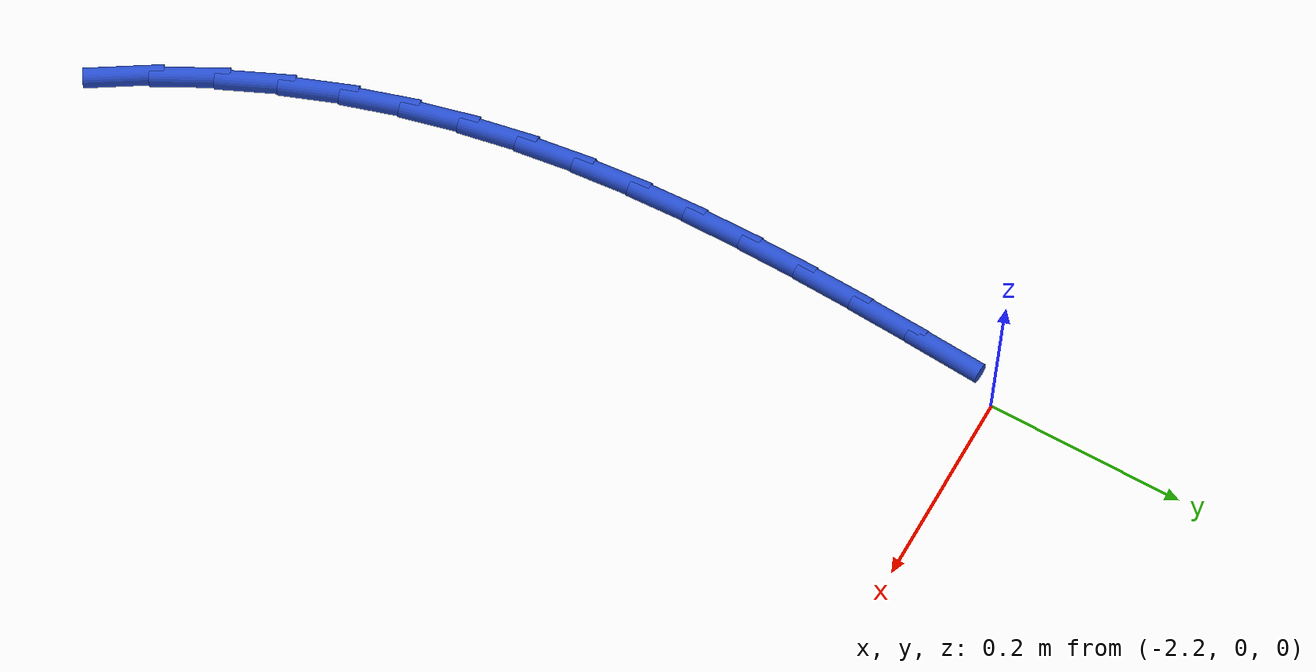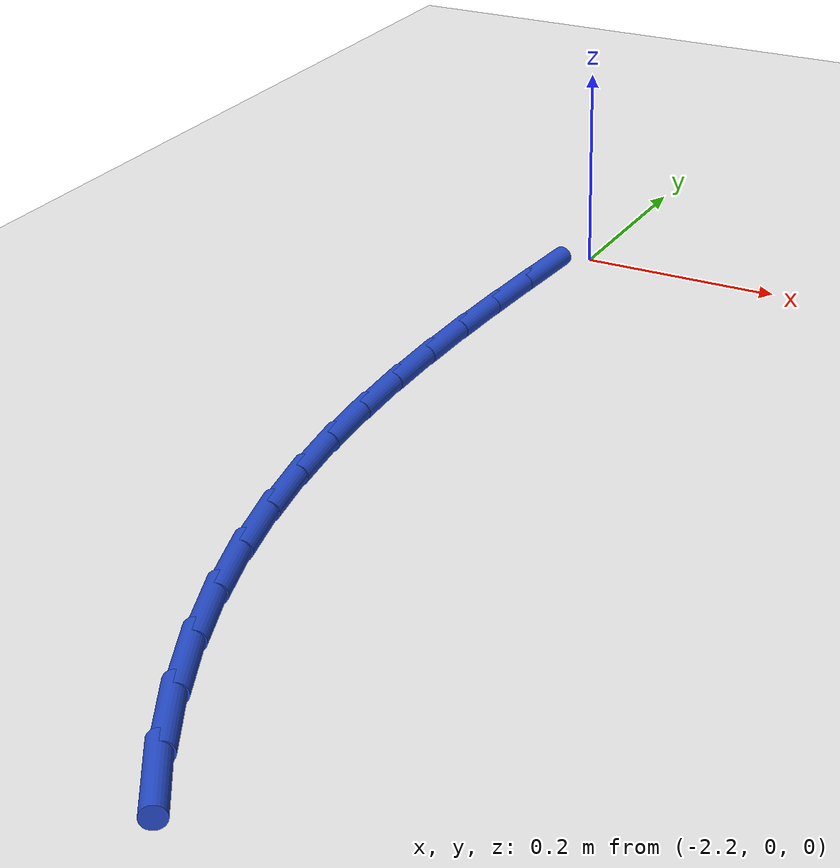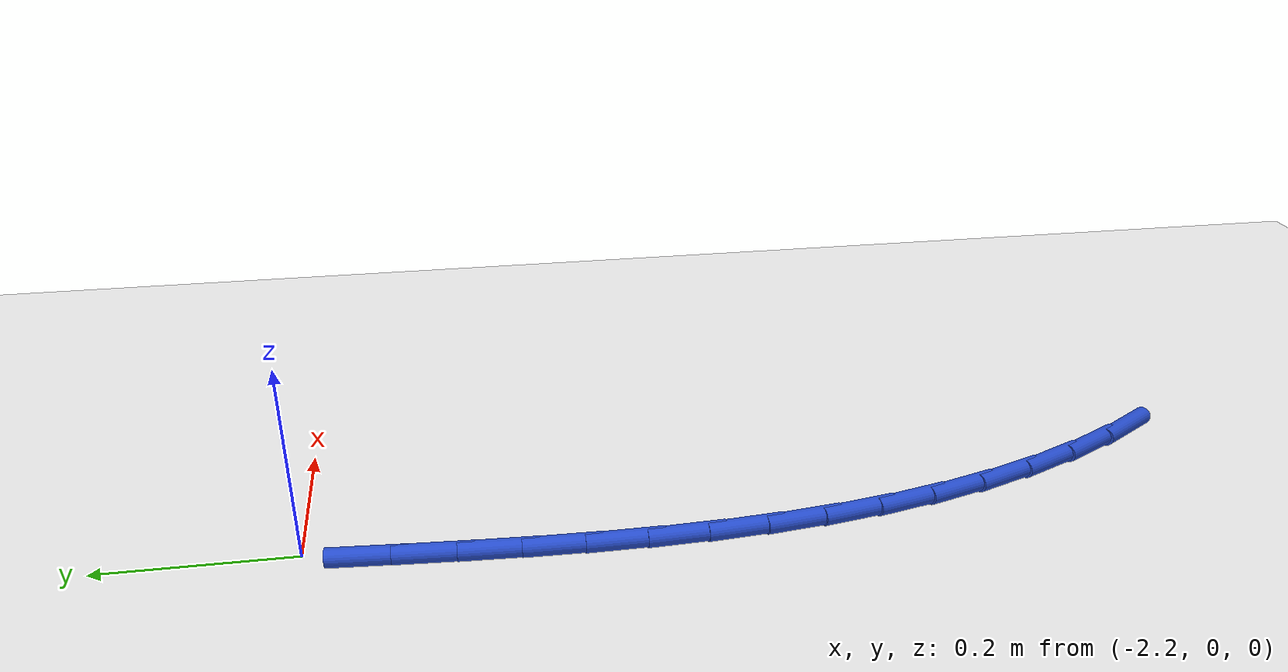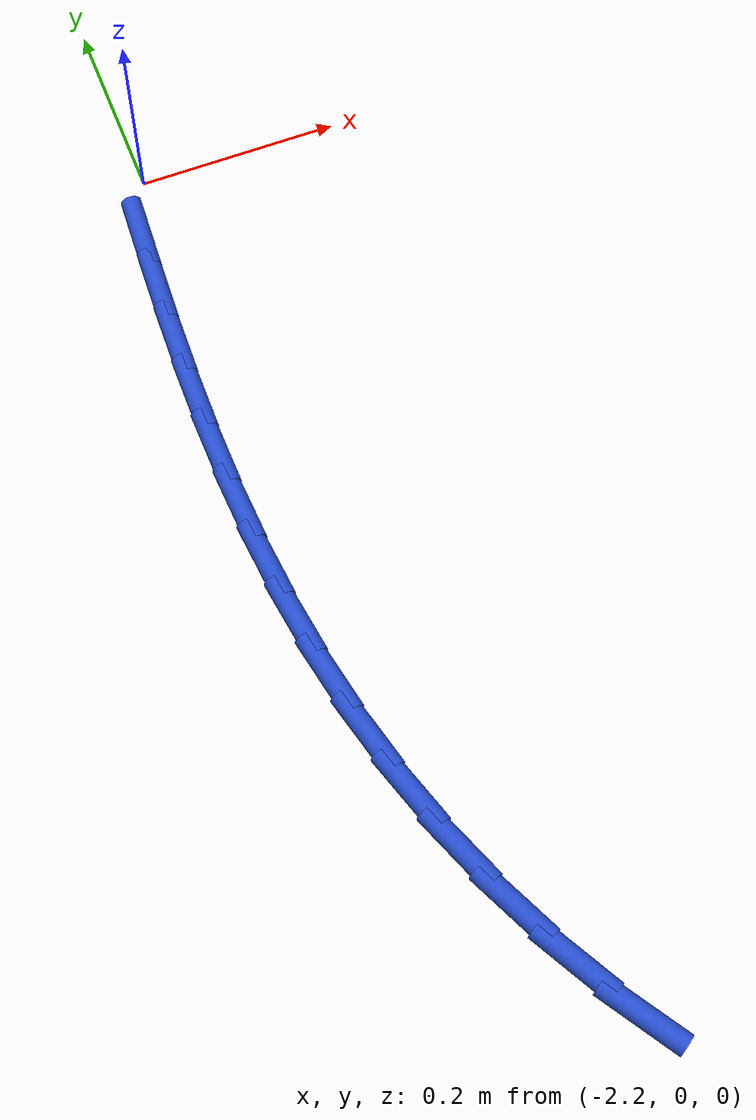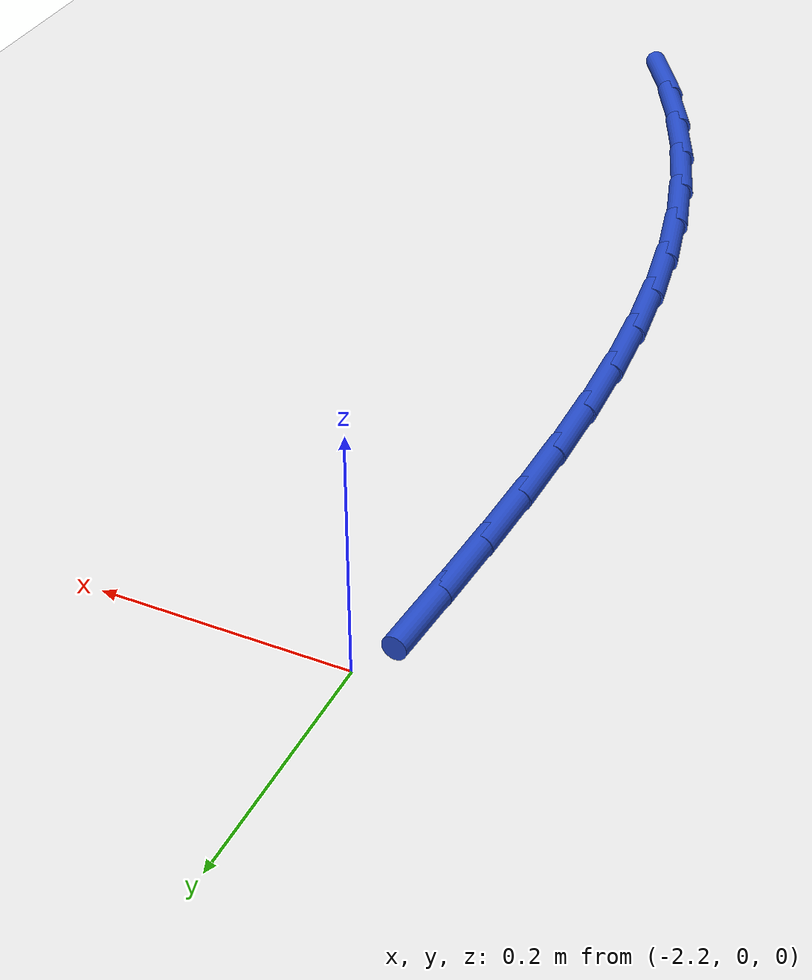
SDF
<sdf version="1.6">
 <world name="default">
  <model name="ground_plane">
   <static>1</static>
   <link name="link">
    <collision name="collision">
     <geometry><plane><normal>0 0 1</normal><size>100 100</size></plane></geometry>
     <surface><friction><ode><mu>100</mu><mu2>50</mu2></ode></friction></surface>
    </collision>
    <visual name="visual">
     <cast_shadows>0</cast_shadows>
     <geometry><plane><normal>0 0 1</normal><size>100 100</size></plane></geometry>
     <material>
      <script><uri>file://media/materials/scripts/gazebo.material</uri><name>Gazebo/WhiteGlow</name></script>
     </material>
    </visual>
   </link>
  </model>
  <model name="line">
   <link name="link_61">
    <pose>-2.2233157254688924 -0.063669461406457 0.01 0 1.57 1.5038848442014618</pose>
    <collision name="collision">
     <geometry><cylinder><radius>0.01</radius><length>0.08</length></cylinder></geometry>
    </collision>
    <visual name="visual">
     <material>
      <script><name>Gazebo/Blue</name><uri>file://media/materials/scripts/gazebo.material</uri></script>
     </material>
     <geometry><cylinder><radius>0.01</radius><length>0.08</length></cylinder></geometry>
    </visual>
   </link>
   <link name="link_62">
    <pose>-2.2275458719565338 -0.1267951230068335 0.01 0 1.57 1.5148610297473717</pose>
    <collision name="collision">
     <geometry><cylinder><radius>0.01</radius><length>0.08</length></cylinder></geometry>
    </collision>
    <visual name="visual">
     <material>
      <script><name>Gazebo/Blue</name><uri>file://media/materials/scripts/gazebo.material</uri></script>
     </material>
     <geometry><cylinder><radius>0.01</radius><length>0.08</length></cylinder></geometry>
    </visual>
   </link>
   <link name="link_63">
    <pose>-2.2310494170610333 -0.18936546074656474 0.01 0 1.57 1.531641688120859</pose>
    <collision name="collision">
     <geometry><cylinder><radius>0.01</radius><length>0.08</length></cylinder></geometry>
    </collision>
    <visual name="visual">
     <material>
      <script><name>Gazebo/Blue</name><uri>file://media/materials/scripts/gazebo.material</uri></script>
     </material>
     <geometry><cylinder><radius>0.01</radius><length>0.08</length></cylinder></geometry>
    </visual>
   </link>
   <link name="link_64">
    <pose>-2.2334801951309227 -0.2514152159768464 0.01 0 1.57 1.5543621168642983</pose>
    <collision name="collision">
     <geometry><cylinder><radius>0.01</radius><length>0.08</length></cylinder></geometry>
    </collision>
    <visual name="visual">
     <material>
      <script><name>Gazebo/Blue</name><uri>file://media/materials/scripts/gazebo.material</uri></script>
     </material>
     <geometry><cylinder><radius>0.01</radius><length>0.08</length></cylinder></geometry>
    </visual>
   </link>
   <link name="link_65">
    <pose>-2.2344920405147373 -0.312979130048877 0.01 0 1.57 -1.5584713369978251</pose>
    <collision name="collision">
     <geometry><cylinder><radius>0.01</radius><length>0.08</length></cylinder></geometry>
    </collision>
    <visual name="visual">
     <material>
      <script><name>Gazebo/Blue</name><uri>file://media/materials/scripts/gazebo.material</uri></script>
     </material>
     <geometry><cylinder><radius>0.01</radius><length>0.08</length></cylinder></geometry>
    </visual>
   </link>
   <link name="link_66">
    <pose>-2.2337387875610077 -0.37409194431385434 0.01 0 1.57 -1.523637179823988</pose>
    <collision name="collision">
     <geometry><cylinder><radius>0.01</radius><length>0.08</length></cylinder></geometry>
    </collision>
    <visual name="visual">
     <material>
      <script><name>Gazebo/Blue</name><uri>file://media/materials/scripts/gazebo.material</uri></script>
     </material>
     <geometry><cylinder><radius>0.01</radius><length>0.08</length></cylinder></geometry>
    </visual>
   </link>
   <link name="link_67">
    <pose>-2.2308742706182687 -0.4347884001229747 0.01 0 1.57 -1.4827881463092583</pose>
    <collision name="collision">
     <geometry><cylinder><radius>0.01</radius><length>0.08</length></cylinder></geometry>
    </collision>
    <visual name="visual">
     <material>
      <script><name>Gazebo/Blue</name><uri>file://media/materials/scripts/gazebo.material</uri></script>
     </material>
     <geometry><cylinder><radius>0.01</radius><length>0.08</length></cylinder></geometry>
    </visual>
   </link>
   <link name="link_68">
    <pose>-2.2255523240350525 -0.4951032388274361 0.01 0 1.57 -1.4361184984106226</pose>
    <collision name="collision">
     <geometry><cylinder><radius>0.01</radius><length>0.08</length></cylinder></geometry>
    </collision>
    <visual name="visual">
     <material>
      <script><name>Gazebo/Blue</name><uri>file://media/materials/scripts/gazebo.material</uri></script>
     </material>
     <geometry><cylinder><radius>0.01</radius><length>0.08</length></cylinder></geometry>
    </visual>
   </link>
   <link name="link_69">
    <pose>-2.217426782159894 -0.5550712017784359 0.01 0 1.57 -1.3839940303814915</pose>
    <collision name="collision">
     <geometry><cylinder><radius>0.01</radius><length>0.08</length></cylinder></geometry>
    </collision>
    <visual name="visual">
     <material>
      <script><name>Gazebo/Blue</name><uri>file://media/materials/scripts/gazebo.material</uri></script>
     </material>
     <geometry><cylinder><radius>0.01</radius><length>0.08</length></cylinder></geometry>
    </visual>
   </link>
   <link name="link_70">
    <pose>-2.2061514793413237 -0.6147270303271726 0.01 0 1.57 -1.3269811008312289</pose>
    <collision name="collision">
     <geometry><cylinder><radius>0.01</radius><length>0.08</length></cylinder></geometry>
    </collision>
    <visual name="visual">
     <material>
      <script><name>Gazebo/Blue</name><uri>file://media/materials/scripts/gazebo.material</uri></script>
     </material>
     <geometry><cylinder><radius>0.01</radius><length>0.08</length></cylinder></geometry>
    </visual>
   </link>
   <link name="link_71">
    <pose>-2.1913802499278767 -0.674105465824842 0.01 0 1.57 -1.2658578169946093</pose>
    <collision name="collision">
     <geometry><cylinder><radius>0.01</radius><length>0.08</length></cylinder></geometry>
    </collision>
    <visual name="visual">
     <material>
      <script><name>Gazebo/Blue</name><uri>file://media/materials/scripts/gazebo.material</uri></script>
     </material>
     <geometry><cylinder><radius>0.01</radius><length>0.08</length></cylinder></geometry>
    </visual>
   </link>
   <link name="link_72">
    <pose>-2.1727669282680857 -0.733241249622642 0.01 0 1.57 -1.201600646997065</pose>
    <collision name="collision">
     <geometry><cylinder><radius>0.01</radius><length>0.08</length></cylinder></geometry>
    </collision>
    <visual name="visual">
     <material>
      <script><name>Gazebo/Blue</name><uri>file://media/materials/scripts/gazebo.material</uri></script>
     </material>
     <geometry><cylinder><radius>0.01</radius><length>0.08</length></cylinder></geometry>
    </visual>
   </link>
   <link name="link_73">
    <pose>-2.1499657556834606 -0.7921684290286248 0.01 0 1.57 -1.1357422709028329</pose>
    <collision name="collision">
     <geometry><cylinder><radius>0.01</radius><length>0.08</length></cylinder></geometry>
    </collision>
    <visual name="visual">
     <material>
      <script><name>Gazebo/Blue</name><uri>file://media/materials/scripts/gazebo.material</uri></script>
     </material>
     <geometry><cylinder><radius>0.01</radius><length>0.08</length></cylinder></geometry>
    </visual>
   </link>
   <link name="link_74">
    <pose>-2.122772526939078 -0.8506796490887634 0.01 0 1.57 -1.0688981544218839</pose>
    <collision name="collision">
     <geometry><cylinder><radius>0.01</radius><length>0.08</length></cylinder></geometry>
    </collision>
    <visual name="visual">
     <material>
      <script><name>Gazebo/Blue</name><uri>file://media/materials/scripts/gazebo.material</uri></script>
     </material>
     <geometry><cylinder><radius>0.01</radius><length>0.08</length></cylinder></geometry>
    </visual>
   </link>
   <link name="link_75">
    <pose>-2.0913316500168784 -0.9079730372094629 0.01 0 1.57 -0.9992522883887772</pose>
    <collision name="collision">
     <geometry><cylinder><radius>0.01</radius><length>0.08</length></cylinder></geometry>
    </collision>
    <visual name="visual">
     <material>
      <script><name>Gazebo/Blue</name><uri>file://media/materials/scripts/gazebo.material</uri></script>
     </material>
     <geometry><cylinder><radius>0.01</radius><length>0.08</length></cylinder></geometry>
    </visual>
   </link>
  </model>
 </world>
</sdf>
